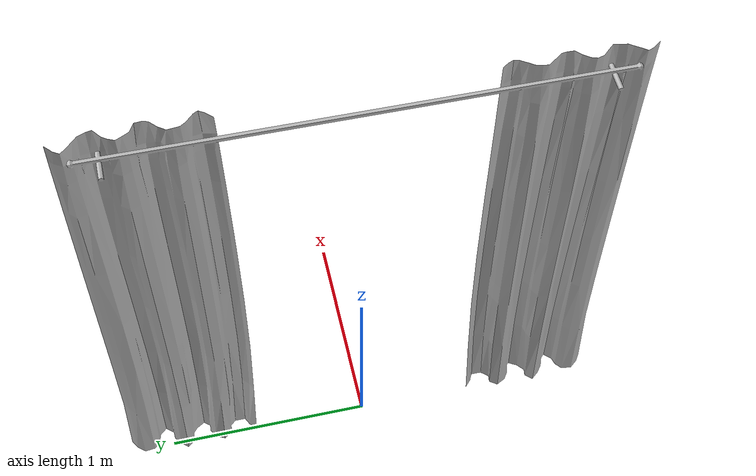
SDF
<?xml version='1.0'?>
<sdf version='1.4'>
  <model name='625'>
    <pose>0 0 0 0 0 0</pose>
    <static>true</static>
    <link name='link'>
      <collision name='collision'>
        <pose>0 0 0 0 0 0</pose>
        <geometry>
          <box>
            <size>0.189588 2.419 2</size>
          </box>
        </geometry>
      </collision>
      <visual name='visual'>
        <pose>0 0 0 0 0 0</pose>
        <geometry>
          <mesh><uri>model://625/625.dae</uri></mesh>
        </geometry>
      </visual>
    </link>
  </model>
</sdf>
